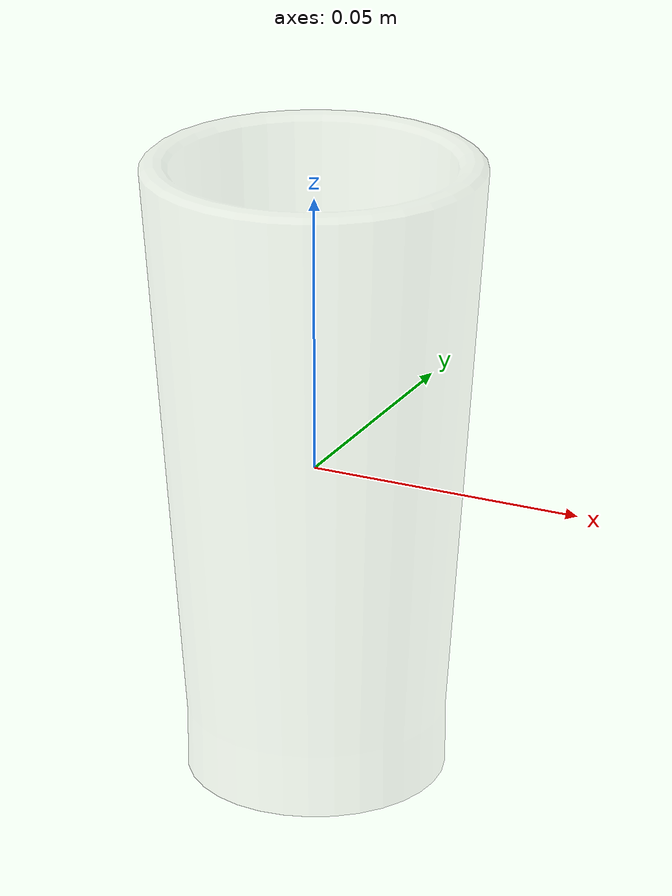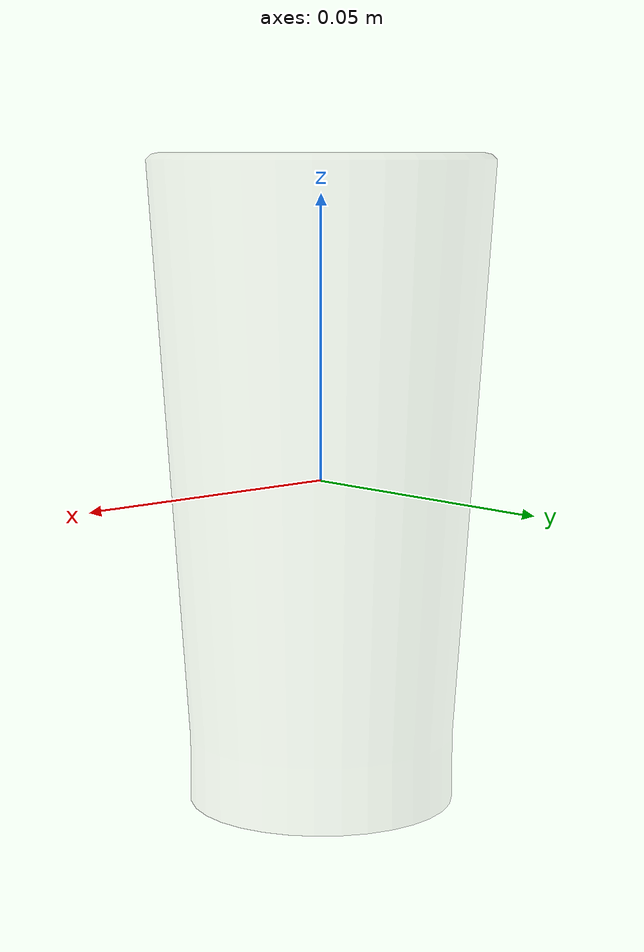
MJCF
<mujoco model="model">
  <option timestep="0.002" gravity="0.0 0.0 -9.81"/>
  <compiler angle="radian"/>
  <asset>
    <mesh file="visual/GlassCup025.obj" name="GlassCup025_vis"/>
    <texture file="visual/T_BC001.png" name="GlassCup025_material" type="2d"/>
    <material name="GlassCup025_material" rgba="1 1 1 0.20000000298023224" texture="GlassCup025_material" shininess="0.5" specular="0.3103448502657381"/>
    <mesh file="collision/collision_mesh_collision_0.obj" name="GlassCup025_collision_mesh_0"/>
    <mesh file="collision/collision_mesh_collision_1.obj" name="GlassCup025_collision_mesh_1"/>
    <mesh file="collision/collision_mesh_collision_2.obj" name="GlassCup025_collision_mesh_2"/>
    <mesh file="collision/collision_mesh_collision_3.obj" name="GlassCup025_collision_mesh_3"/>
    <mesh file="collision/collision_mesh_collision_4.obj" name="GlassCup025_collision_mesh_4"/>
    <mesh file="collision/collision_mesh_collision_5.obj" name="GlassCup025_collision_mesh_5"/>
    <mesh file="collision/collision_mesh_collision_6.obj" name="GlassCup025_collision_mesh_6"/>
    <mesh file="collision/collision_mesh_collision_7.obj" name="GlassCup025_collision_mesh_7"/>
    <mesh file="collision/collision_mesh_collision_8.obj" name="GlassCup025_collision_mesh_8"/>
    <mesh file="collision/collision_mesh_collision_9.obj" name="GlassCup025_collision_mesh_9"/>
    <mesh file="collision/collision_mesh_collision_10.obj" name="GlassCup025_collision_mesh_10"/>
    <mesh file="collision/collision_mesh_collision_11.obj" name="GlassCup025_collision_mesh_11"/>
    <mesh file="collision/collision_mesh_collision_12.obj" name="GlassCup025_collision_mesh_12"/>
    <mesh file="collision/collision_mesh_collision_13.obj" name="GlassCup025_collision_mesh_13"/>
    <mesh file="collision/collision_mesh_collision_14.obj" name="GlassCup025_collision_mesh_14"/>
    <mesh file="collision/collision_mesh_collision_15.obj" name="GlassCup025_collision_mesh_15"/>
  </asset>
  <default>
    <default class="visual">
      <geom conaffinity="0" contype="0" group="1" type="mesh"/>
    </default>
    <default class="collision">
      <geom group="3" rgba="0.5 0 0 0.5" density="1000.0"/>
    </default>
    <default class="spawn">
      <geom group="0" rgba="1 1 1 0.5" contype="0" conaffinity="0"/>
      <site group="0" rgba="1 1 1 0.5"/>
    </default>
    <default class="region">
      <geom group="1" conaffinity="0" contype="0" rgba="0 1 0 0" mass="0"/>
    </default>
  </default>
  <worldbody>
    <body>
      <body name="object">
        <geom mesh="GlassCup025_vis" type="mesh" solimp="0.998 0.998 0.001" solref="0.001 1" friction="0.95 0.3 0.1" class="visual" material="GlassCup025_material"/>
        <geom mesh="GlassCup025_collision_mesh_0" type="mesh" class="collision"/>
        <geom mesh="GlassCup025_collision_mesh_1" type="mesh" class="collision"/>
        <geom mesh="GlassCup025_collision_mesh_2" type="mesh" class="collision"/>
        <geom mesh="GlassCup025_collision_mesh_3" type="mesh" class="collision"/>
        <geom mesh="GlassCup025_collision_mesh_4" type="mesh" class="collision"/>
        <geom mesh="GlassCup025_collision_mesh_5" type="mesh" class="collision"/>
        <geom mesh="GlassCup025_collision_mesh_6" type="mesh" class="collision"/>
        <geom mesh="GlassCup025_collision_mesh_7" type="mesh" class="collision"/>
        <geom mesh="GlassCup025_collision_mesh_8" type="mesh" class="collision"/>
        <geom mesh="GlassCup025_collision_mesh_9" type="mesh" class="collision"/>
        <geom mesh="GlassCup025_collision_mesh_10" type="mesh" class="collision"/>
        <geom mesh="GlassCup025_collision_mesh_11" type="mesh" class="collision"/>
        <geom mesh="GlassCup025_collision_mesh_12" type="mesh" class="collision"/>
        <geom mesh="GlassCup025_collision_mesh_13" type="mesh" class="collision"/>
        <geom mesh="GlassCup025_collision_mesh_14" type="mesh" class="collision"/>
        <geom mesh="GlassCup025_collision_mesh_15" type="mesh" class="collision"/>
        <geom class="region" name="reg_bbox" type="box" pos="-6.249999999988903e-07 -5.999999999999062e-07 0.0" size="0.030121375 0.0301214 0.057064"/>
        <geom class="region" name="liquid" type="cylinder" rgba="0 0 0 0" size="0.022 0.03" pos="0.000002 0.000000 -0.015"/>
        <geom class="region" name="reg_int" type="cylinder" rgba="0 0 0 0" size="0.02 0.05" pos="0.000002 0.000000 0.005"/>
      </body>
    </body>
  </worldbody>
  <actuator/>
</mujoco>
